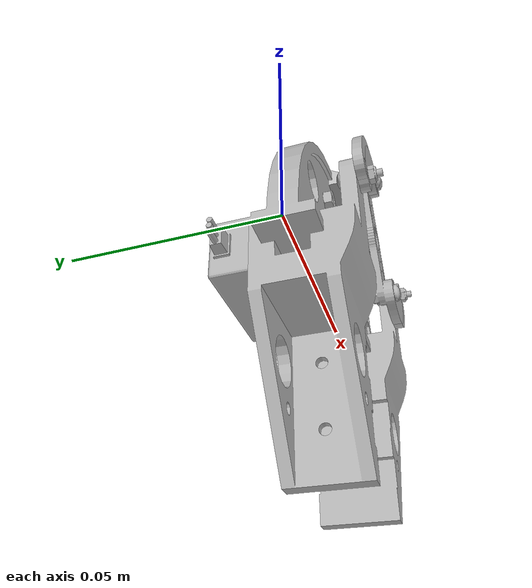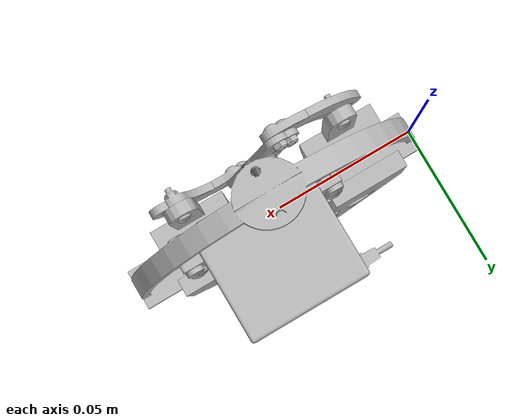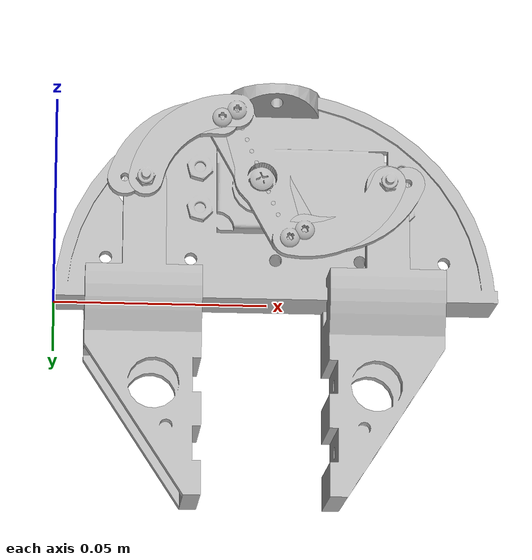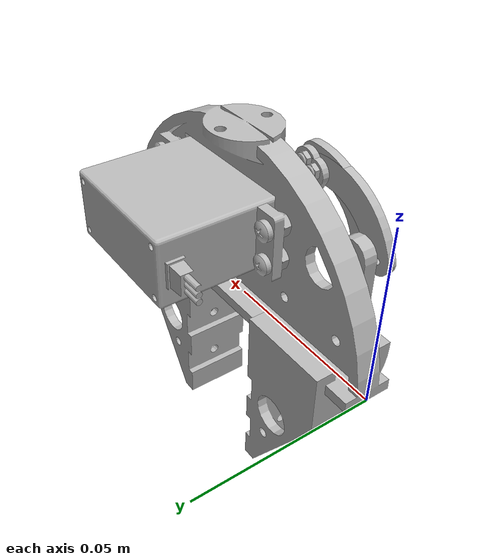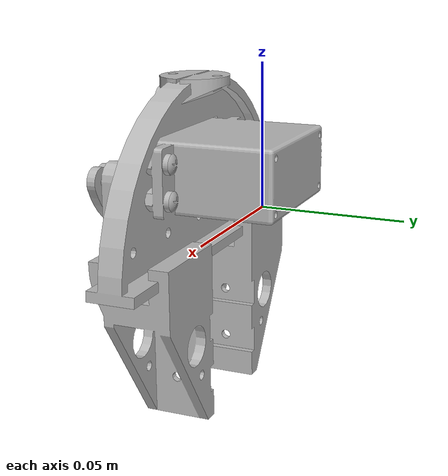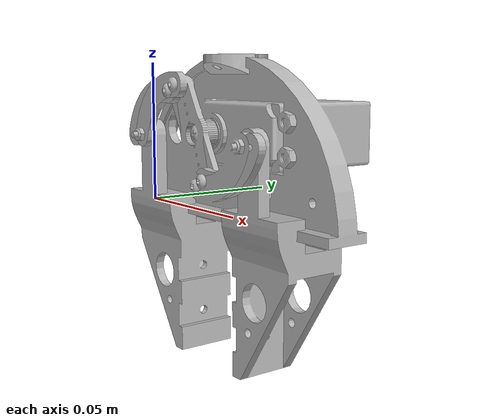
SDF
<sdf version='1.6'>
  <model name='gripper1'>
    <link name='base_link'>
      <pose frame=''>0 0 0 0 -0 0</pose>
      <inertial>
        <pose frame=''>0.052961 0.021855 -0.002474 0 -0 0</pose>
        <mass>0.16444</mass>
        <inertia>
          <ixx>4.0749e-05</ixx>
          <ixy>5.9789e-07</ixy>
          <ixz>2.6891e-08</ixz>
          <iyy>0.00011126</iyy>
          <iyz>-6.7446e-07</iyz>
          <izz>0.00014195</izz>
        </inertia>
      </inertial>
      <collision name='base_link_collision'>
        <pose frame=''>0 0 0 0 -0 0</pose>
        <geometry>
          <mesh>
            <scale>1 1 1</scale>
            <uri>model://gripper1/meshes/base_link.STL</uri>
          </mesh>
        </geometry>
      </collision>
      <visual name='base_link_visual'>
        <pose frame=''>0 0 0 0 -0 0</pose>
        <geometry>
          <mesh>
            <scale>1 1 1</scale>
            <uri>model://gripper1/meshes/base_link.STL</uri>
          </mesh>
        </geometry>
      </visual>
    </link>
    <link name='Center_Link'>
      <pose frame=''>0.048 -0.01196 0.0275 1.5708 -0 0</pose>
      <inertial>
        <pose frame=''>0 -0 -5.5e-05 0 -0 0</pose>
        <mass>0.0067327</mass>
        <inertia>
          <ixx>3.6724e-07</ixx>
          <ixy>2.0659e-07</ixy>
          <ixz>-5.9587e-17</ixz>
          <iyy>2.2585e-07</iyy>
          <iyz>3.0149e-17</iyz>
          <izz>5.4545e-07</izz>
        </inertia>
      </inertial>
      <collision name='Center_Link_collision'>
        <pose frame=''>0 0 0 0 -0 0</pose>
        <geometry>
          <mesh>
            <scale>1 1 1</scale>
            <uri>model://gripper1/meshes/Center_Link.STL</uri>
          </mesh>
        </geometry>
      </collision>
      <visual name='Center_Link_visual'>
        <pose frame=''>0 0 0 0 -0 0</pose>
        <geometry>
          <mesh>
            <scale>1 1 1</scale>
            <uri>model://gripper1/meshes/Center_Link.STL</uri>
          </mesh>
        </geometry>
      </visual>
    </link>
    <joint name='joint_center' type='revolute'>
      <child>Center_Link</child>
      <parent>base_link</parent>
      <axis>
        <xyz>0 0 -1</xyz>
        <limit>
          <lower>0</lower>
          <upper>0</upper>
          <effort>0</effort>
          <velocity>0</velocity>
        </limit>
        <dynamics>
          <spring_reference>0</spring_reference>
          <spring_stiffness>0</spring_stiffness>
        </dynamics>
        <use_parent_model_frame>0</use_parent_model_frame>
      </axis>
    </joint>
    <link name='Left_Link_1'>
      <pose frame=''>0.038406 -0.016779 0.040924 1.5708 -0 0</pose>
      <inertial>
        <pose frame=''>-0.012499 -0.005371 -0.001761 0 -0 0</pose>
        <mass>0.006232</mass>
        <inertia>
          <ixx>1.9836e-07</ixx>
          <ixy>-2.091e-07</ixy>
          <ixz>-4.2796e-16</ixz>
          <iyy>3.7494e-07</iyy>
          <iyz>-8.7981e-17</iyz>
          <izz>5.5573e-07</izz>
        </inertia>
      </inertial>
      <collision name='Left_Link_1_collision'>
        <pose frame=''>0 0 0 0 -0 0</pose>
        <geometry>
          <mesh>
            <scale>1 1 1</scale>
            <uri>model://gripper1/meshes/Left_Link_1.STL</uri>
          </mesh>
        </geometry>
      </collision>
      <visual name='Left_Link_1_visual'>
        <pose frame=''>0 0 0 0 -0 0</pose>
        <geometry>
          <mesh>
            <scale>1 1 1</scale>
            <uri>model://gripper1/meshes/Left_Link_1.STL</uri>
          </mesh>
        </geometry>
      </visual>
    </link>
    <joint name='Left_joint_1' type='revolute'>
      <child>Left_Link_1</child>
      <parent>Center_Link</parent>
      <axis>
        <xyz>0 0 -1</xyz>
        <limit>
          <lower>0</lower>
          <upper>0</upper>
          <effort>0</effort>
          <velocity>0</velocity>
        </limit>
        <dynamics>
          <spring_reference>0</spring_reference>
          <spring_stiffness>0</spring_stiffness>
        </dynamics>
        <use_parent_model_frame>0</use_parent_model_frame>
      </axis>
    </joint>
    <link name='right_link_1'>
      <pose frame=''>0.057594 -0.016779 0.014076 1.5708 -0 0</pose>
      <inertial>
        <pose frame=''>0.013084 0.003729 -0.001761 0 -0 0</pose>
        <mass>0.006232</mass>
        <inertia>
          <ixx>1.4821e-07</ixx>
          <ixy>-1.7987e-07</ixy>
          <ixz>-4.2626e-16</ixz>
          <iyy>4.2509e-07</iyy>
          <iyz>-8.85e-17</iyz>
          <izz>5.5573e-07</izz>
        </inertia>
      </inertial>
      <collision name='right_link_1_collision'>
        <pose frame=''>0 0 0 0 -0 0</pose>
        <geometry>
          <mesh>
            <scale>1 1 1</scale>
            <uri>model://gripper1/meshes/right_link_1.STL</uri>
          </mesh>
        </geometry>
      </collision>
      <visual name='right_link_1_visual'>
        <pose frame=''>0 0 0 0 -0 0</pose>
        <geometry>
          <mesh>
            <scale>1 1 1</scale>
            <uri>model://gripper1/meshes/right_link_1.STL</uri>
          </mesh>
        </geometry>
      </visual>
    </link>
    <joint name='right_joint_1' type='revolute'>
      <child>right_link_1</child>
      <parent>Center_Link</parent>
      <axis>
        <xyz>0 0 -1</xyz>
        <limit>
          <lower>0</lower>
          <upper>0</upper>
          <effort>0</effort>
          <velocity>0</velocity>
        </limit>
        <dynamics>
          <spring_reference>0</spring_reference>
          <spring_stiffness>0</spring_stiffness>
        </dynamics>
        <use_parent_model_frame>0</use_parent_model_frame>
      </axis>
    </joint>
    <link name='left_slider'>
      <pose frame=''>0 0 0 1.5708 -0 0</pose>
      <inertial>
        <pose frame=''>0.029369 -0.00922 0.00195 0 -0 0</pose>
        <mass>0.19749</mass>
        <inertia>
          <ixx>5.6668e-05</ixx>
          <ixy>2.3512e-15</ixy>
          <ixz>-3.221e-16</ixz>
          <iyy>2.3409e-05</iyy>
          <iyz>-6.7051e-06</iyz>
          <izz>5.7287e-05</izz>
        </inertia>
      </inertial>
      <collision name='left_slider_collision'>
        <pose frame=''>0 0 0 0 -0 0</pose>
        <geometry>
          <mesh>
            <scale>1 1 1</scale>
            <uri>model://gripper1/meshes/left_slider.STL</uri>
          </mesh>
        </geometry>
      </collision>
      <visual name='left_slider_visual'>
        <pose frame=''>0 0 0 0 -0 0</pose>
        <geometry>
          <mesh>
            <scale>1 1 1</scale>
            <uri>model://gripper1/meshes/left_slider.STL</uri>
          </mesh>
        </geometry>
      </visual>
    </link>
    <joint name='left_slider_joint' type='prismatic'>
      <child>left_slider</child>
      <parent>base_link</parent>
      <axis>
        <xyz>-1 0 0</xyz>
        <limit>
          <lower>-0.01</lower>
          <upper>0.01</upper>
          <effort>0</effort>
          <velocity>0.01</velocity>
        </limit>
        <dynamics>
          <damping>0.0001</damping>
          <friction>0</friction>
          <spring_reference>0</spring_reference>
          <spring_stiffness>0</spring_stiffness>
        </dynamics>
        <use_parent_model_frame>0</use_parent_model_frame>
      </axis>
    </joint>
    <link name='right_slider'>
      <pose frame=''>0.104 0 0 1.5708 -0 0</pose>
      <inertial>
        <pose frame=''>-0.024317 -0.009215 0.001954 0 -0 0</pose>
        <mass>0.098758</mass>
        <inertia>
          <ixx>2.8497e-05</ixx>
          <ixy>-4.6686e-06</ixy>
          <ixz>-4.0714e-07</ixz>
          <iyy>1.1716e-05</iyy>
          <iyz>-3.3961e-06</iyz>
          <izz>2.8797e-05</izz>
        </inertia>
      </inertial>
      <collision name='right_slider_collision'>
        <pose frame=''>0 0 0 0 -0 0</pose>
        <geometry>
          <mesh>
            <scale>1 1 1</scale>
            <uri>model://gripper1/meshes/right_slider.STL</uri>
          </mesh>
        </geometry>
      </collision>
      <visual name='right_slider_visual'>
        <pose frame=''>0 0 0 0 -0 0</pose>
        <geometry>
          <mesh>
            <scale>1 1 1</scale>
            <uri>model://gripper1/meshes/right_slider.STL</uri>
          </mesh>
        </geometry>
      </visual>
    </link>
    <joint name='right_slider_joint' type='prismatic'>
      <child>right_slider</child>
      <parent>base_link</parent>
      <axis>
        <xyz>-1 0 0</xyz>
        <limit>
          <lower>0</lower>
          <upper>0</upper>
          <effort>0</effort>
          <velocity>1</velocity>
        </limit>
        <dynamics>
          <spring_reference>0</spring_reference>
          <spring_stiffness>0</spring_stiffness>
        </dynamics>
        <use_parent_model_frame>0</use_parent_model_frame>
      </axis>
    </joint>
  <plugin name="gripper_control1" filename="libgripper_plugin1.so"/>
  </model>
</sdf>
